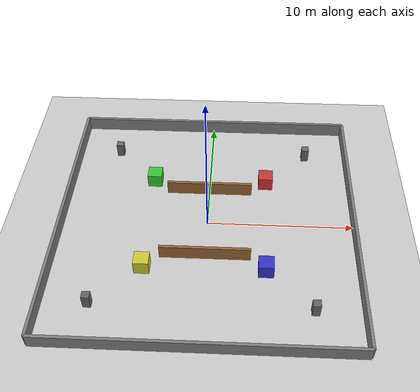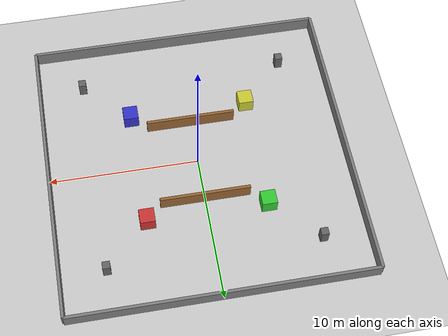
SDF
<?xml version="1.0" ?>
<sdf version="1.6">
  <world name="husky_workshop">

    <include>
      <uri>model://ground_plane</uri>
    </include>

    <include>
      <uri>model://sun</uri>
    </include>

    <!-- Outer walls -->
    <model name="wall_north">
      <static>true</static>
      <pose>0 10 0.5 0 0 0</pose>
      <link name="link">
        <collision name="collision">
          <geometry><box><size>20 0.2 1</size></box></geometry>
        </collision>
        <visual name="visual">
          <geometry><box><size>20 0.2 1</size></box></geometry>
          <material><ambient>0.5 0.5 0.5 1</ambient></material>
        </visual>
      </link>
    </model>

    <model name="wall_south">
      <static>true</static>
      <pose>0 -10 0.5 0 0 0</pose>
      <link name="link">
        <collision name="collision">
          <geometry><box><size>20 0.2 1</size></box></geometry>
        </collision>
        <visual name="visual">
          <geometry><box><size>20 0.2 1</size></box></geometry>
          <material><ambient>0.5 0.5 0.5 1</ambient></material>
        </visual>
      </link>
    </model>

    <model name="wall_east">
      <static>true</static>
      <pose>10 0 0.5 0 0 0</pose>
      <link name="link">
        <collision name="collision">
          <geometry><box><size>0.2 20 1</size></box></geometry>
        </collision>
        <visual name="visual">
          <geometry><box><size>0.2 20 1</size></box></geometry>
          <material><ambient>0.5 0.5 0.5 1</ambient></material>
        </visual>
      </link>
    </model>

    <model name="wall_west">
      <static>true</static>
      <pose>-10 0 0.5 0 0 0</pose>
      <link name="link">
        <collision name="collision">
          <geometry><box><size>0.2 20 1</size></box></geometry>
        </collision>
        <visual name="visual">
          <geometry><box><size>0.2 20 1</size></box></geometry>
          <material><ambient>0.5 0.5 0.5 1</ambient></material>
        </visual>
      </link>
    </model>

    <!-- Interior obstacles -->
    <model name="box1">
      <static>true</static>
      <pose>4 4 0.5 0 0 0</pose>
      <link name="link">
        <collision name="collision">
          <geometry><box><size>1 1 1</size></box></geometry>
        </collision>
        <visual name="visual">
          <geometry><box><size>1 1 1</size></box></geometry>
          <material><ambient>0.8 0.2 0.2 1</ambient></material>
        </visual>
      </link>
    </model>

    <model name="box2">
      <static>true</static>
      <pose>-4 4 0.5 0 0 0</pose>
      <link name="link">
        <collision name="collision">
          <geometry><box><size>1 1 1</size></box></geometry>
        </collision>
        <visual name="visual">
          <geometry><box><size>1 1 1</size></box></geometry>
          <material><ambient>0.2 0.8 0.2 1</ambient></material>
        </visual>
      </link>
    </model>

    <model name="box3">
      <static>true</static>
      <pose>4 -4 0.5 0 0 0</pose>
      <link name="link">
        <collision name="collision">
          <geometry><box><size>1 1 1</size></box></geometry>
        </collision>
        <visual name="visual">
          <geometry><box><size>1 1 1</size></box></geometry>
          <material><ambient>0.2 0.2 0.8 1</ambient></material>
        </visual>
      </link>
    </model>

    <model name="box4">
      <static>true</static>
      <pose>-4 -4 0.5 0 0 0</pose>
      <link name="link">
        <collision name="collision">
          <geometry><box><size>1 1 1</size></box></geometry>
        </collision>
        <visual name="visual">
          <geometry><box><size>1 1 1</size></box></geometry>
          <material><ambient>0.8 0.8 0.2 1</ambient></material>
        </visual>
      </link>
    </model>

    <!-- Internal wall divider -->
    <model name="divider1">
      <static>true</static>
      <pose>0 3 0.5 0 0 0</pose>
      <link name="link">
        <collision name="collision">
          <geometry><box><size>6 0.2 1</size></box></geometry>
        </collision>
        <visual name="visual">
          <geometry><box><size>6 0.2 1</size></box></geometry>
          <material><ambient>0.6 0.4 0.2 1</ambient></material>
        </visual>
      </link>
    </model>

    <model name="divider2">
      <static>true</static>
      <pose>0 -3 0.5 0 0 0</pose>
      <link name="link">
        <collision name="collision">
          <geometry><box><size>6 0.2 1</size></box></geometry>
        </collision>
        <visual name="visual">
          <geometry><box><size>6 0.2 1</size></box></geometry>
          <material><ambient>0.6 0.4 0.2 1</ambient></material>
        </visual>
      </link>
    </model>

    <model name="pillar1">
      <static>true</static>
      <pose>7 7 0.5 0 0 0</pose>
      <link name="link">
        <collision name="collision">
          <geometry><box><size>0.5 0.5 1</size></box></geometry>
        </collision>
        <visual name="visual">
          <geometry><box><size>0.5 0.5 1</size></box></geometry>
          <material><ambient>0.4 0.4 0.4 1</ambient></material>
        </visual>
      </link>
    </model>

    <model name="pillar2">
      <static>true</static>
      <pose>-7 7 0.5 0 0 0</pose>
      <link name="link">
        <collision name="collision">
          <geometry><box><size>0.5 0.5 1</size></box></geometry>
        </collision>
        <visual name="visual">
          <geometry><box><size>0.5 0.5 1</size></box></geometry>
          <material><ambient>0.4 0.4 0.4 1</ambient></material>
        </visual>
      </link>
    </model>

    <model name="pillar3">
      <static>true</static>
      <pose>7 -7 0.5 0 0 0</pose>
      <link name="link">
        <collision name="collision">
          <geometry><box><size>0.5 0.5 1</size></box></geometry>
        </collision>
        <visual name="visual">
          <geometry><box><size>0.5 0.5 1</size></box></geometry>
          <material><ambient>0.4 0.4 0.4 1</ambient></material>
        </visual>
      </link>
    </model>

    <model name="pillar4">
      <static>true</static>
      <pose>-7 -7 0.5 0 0 0</pose>
      <link name="link">
        <collision name="collision">
          <geometry><box><size>0.5 0.5 1</size></box></geometry>
        </collision>
        <visual name="visual">
          <geometry><box><size>0.5 0.5 1</size></box></geometry>
          <material><ambient>0.4 0.4 0.4 1</ambient></material>
        </visual>
      </link>
    </model>

  </world>
</sdf>
